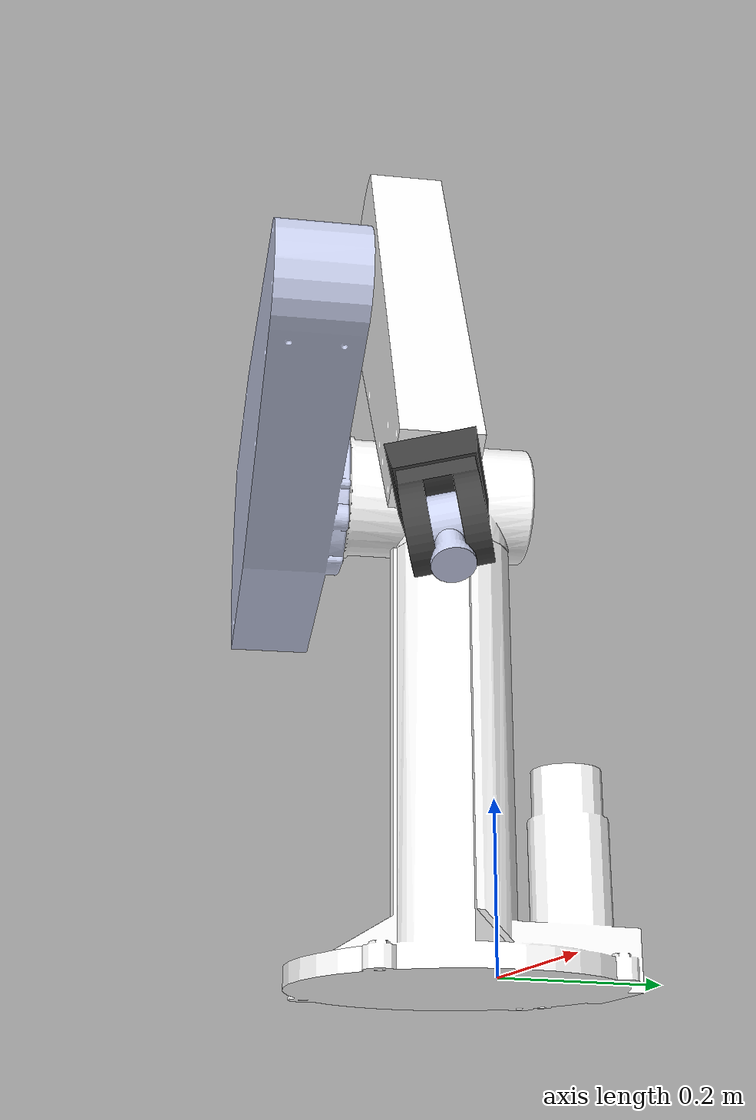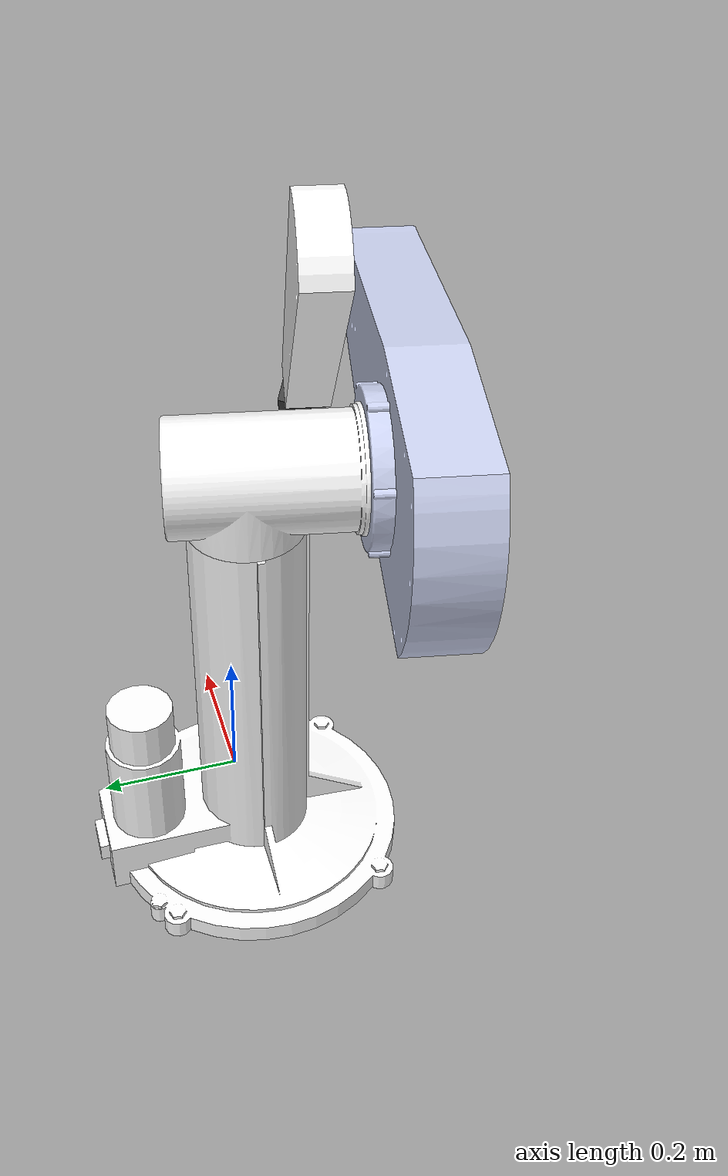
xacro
<?xml version="1.0" encoding="utf-8"?>
<robot
  name="puma560_description" xmlns:xacro="http://www.ros.org/wiki/xacro">
  <!-- Puma 560 description.-->
  <link
    name="world">
    <visual>
      <origin
        xyz="0 0 0"
        rpy="0 0 0" />
      <geometry>
        <box size="0.0 0.0 0.0"/>
      </geometry>
    </visual>
  </link>
  <link
    name="base_link">
    <inertial>
      <origin
        xyz="-0.12618 -0.038304 -0.022005"
        rpy="0 0 0" />
      <mass
        value="15.807" />
      <inertia
        ixx="0.55024"
        ixy="-1.5584E-10"
        ixz="2.6401E-11"
        iyy="0.16071"
        iyz="-0.022162"
        izz="0.50424" />
    </inertial>
    <visual>
      <origin
        xyz="0 0 0"
        rpy="0 0 0" />
      <geometry>
        <mesh
          filename="package://puma560_description/meshes/base_link.STL" />
      </geometry>
      <material
        name="">
        <color
          rgba="1 1 1 1" />
      </material>
    </visual>
    <collision>
      <origin
        xyz="0 0 0"
        rpy="0 0 0" />
      <geometry>
        <mesh
          filename="package://puma560_description/meshes/base_link.STL" />
      </geometry>
    </collision>
  </link>
  <joint
    name="j0"
    type="fixed">
    <origin
      xyz="0 0 0.23"
      rpy="0 0 0" />
    <parent
      link="world" />
    <child
      link="base_link" />
  </joint>
  <link
    name="link_1">
    <inertial>
      <origin
        xyz="-0.022505 -0.07849 -3.2256E-07"
        rpy="0 0 0" />
      <mass
        value="4.4341" />
      <inertia
        ixx="0.013316"
        ixy="-0.00027859"
        ixz="-1.214E-07"
        iyy="0.027164"
        iyz="2.346E-07"
        izz="0.027328" />
    </inertial>
    <visual>
      <origin
        xyz="0 0 0"
        rpy="0 0 0" />
      <geometry>
        <mesh
          filename="package://puma560_description/meshes/link_1.STL" />
      </geometry>
      <material
        name="">
        <color
          rgba="1 1 1 1" />
      </material>
    </visual>
    <collision>
      <origin
        xyz="0 0 0"
        rpy="0 0 0" />
      <geometry>
        <mesh
          filename="package://puma560_description/meshes/link_1.STL" />
      </geometry>
    </collision>
  </link>
  <joint
    name="j1"
    type="revolute">
    <origin
      xyz="-0.12618 0 0.31169"
      rpy="-1.5708 0 1.3815" />
    <parent
      link="base_link" />
    <child
      link="link_1" />
    <axis
      xyz="0 1 0" />
    <limit
      lower="-3.1416"
      upper="3.1416"
      effort="1000"
      velocity="0.5" />
  </joint>
  <link
    name="link_2">
    <inertial>
      <origin
        xyz="-0.068869 -4.6775E-05 0.082737"
        rpy="0 0 0" />
      <mass
        value="16.847" />
      <inertia
        ixx="0.65976"
        ixy="4.8383E-05"
        ixz="0.0043475"
        iyy="0.59657"
        iyz="-7.8848E-06"
        izz="0.09723" />
    </inertial>
    <visual>
      <origin
        xyz="0 0 0"
        rpy="0 0 0" />
      <geometry>
        <mesh
          filename="package://puma560_description/meshes/link_2.STL" />
      </geometry>
      <material
        name="">
        <color
          rgba="0.79216 0.81961 0.93333 1" />
      </material>
    </visual>
    <collision>
      <origin
        xyz="0 0 0"
        rpy="0 0 0" />
      <geometry>
        <mesh
          filename="package://puma560_description/meshes/link_2.STL" />
      </geometry>
    </collision>
  </link>
  <joint
    name="j2"
    type="revolute">
    <origin
      xyz="-0.14641 -0.08128 0"
      rpy="3.0346 0 0" />
    <parent
      link="link_1" />
    <child
      link="link_2" />
    <axis
      xyz="1 0 0" />
    <limit
      lower="-1.5707"
      upper="1.5707"
      effort="1000"
      velocity="0.5" />
  </joint>
  <link
    name="link_3">
    <inertial>
      <origin
        xyz="-0.01687 -0.088774 -1.1788E-06"
        rpy="0 0 0" />
      <mass
        value="4.6025" />
      <inertia
        ixx="0.087355"
        ixy="-2.2739E-06"
        ixz="3.6529E-07"
        iyy="0.0091916"
        iyz="-4.837E-07"
        izz="0.082615" />
    </inertial>
    <visual>
      <origin
        xyz="0 0 0"
        rpy="0 0 0" />
      <geometry>
        <mesh
          filename="package://puma560_description/meshes/link_3.STL" />
      </geometry>
      <material
        name="">
        <color
          rgba="1 1 1 1" />
      </material>
    </visual>
    <collision>
      <origin
        xyz="0 0 0"
        rpy="0 0 0" />
      <geometry>
        <mesh
          filename="package://puma560_description/meshes/link_3.STL" />
      </geometry>
    </collision>
  </link>
  <joint
    name="j3"
    type="revolute">
    <origin
      xyz="0 0 0.4318"
      rpy="-2.6879 0 -3.1416" />
    <parent
      link="link_2" />
    <child
      link="link_3" />
    <axis
      xyz="1 0 0" />
    <limit
      lower="-1.5707"
      upper="1.5707"
      effort="1000"
      velocity="0.5" />
  </joint>
  <link
    name="link_4">
    <inertial>
      <origin
        xyz="1.1102E-16 -0.0067199 2.7756E-17"
        rpy="0 0 0" />
      <mass
        value="0.47079" />
      <inertia
        ixx="0.00077289"
        ixy="-1.7279E-19"
        ixz="-5.421E-20"
        iyy="0.00046683"
        iyz="1.5585E-19"
        izz="0.00073772" />
    </inertial>
    <visual>
      <origin
        xyz="0 0 0"
        rpy="0 0 0" />
      <geometry>
        <mesh
          filename="package://puma560_description/meshes/link_4.STL" />
      </geometry>
      <material
        name="">
        <color
          rgba="0.25098 0.25098 0.25098 1" />
      </material>
    </visual>
    <collision>
      <origin
        xyz="0 0 0"
        rpy="0 0 0" />
      <geometry>
        <mesh
          filename="package://puma560_description/meshes/link_4.STL" />
      </geometry>
    </collision>
  </link>
  <joint
    name="j4"
    type="revolute">
    <origin
      xyz="-0.016872 -0.39296 0"
      rpy="3.1416 -1.2686 3.1416" />
    <parent
      link="link_3" />
    <child
      link="link_4" />
    <axis
      xyz="0 1 0" />
    <limit
      lower="-1.5707"
      upper="1.5707"
      effort="1000"
      velocity="0.5" />
  </joint>
  <link
    name="link_5">
    <inertial>
      <origin
        xyz="6.6543E-10 -3.7332E-09 0.010974"
        rpy="0 0 0" />
      <mass
        value="0.077406" />
      <inertia
        ixx="4.5414E-05"
        ixy="1.1361E-11"
        ixz="-6.3669E-13"
        iyy="4.3032E-05"
        iyz="2.5557E-12"
        izz="1.6966E-05" />
    </inertial>
    <visual>
      <origin
        xyz="0 0 0"
        rpy="0 0 0" />
      <geometry>
        <mesh
          filename="package://puma560_description/meshes/link_5.STL" />
      </geometry>
      <material
        name="">
        <color
          rgba="0.79216 0.81961 0.93333 1" />
      </material>
    </visual>
    <collision>
      <origin
        xyz="0 0 0"
        rpy="0 0 0" />
      <geometry>
        <mesh
          filename="package://puma560_description/meshes/link_5.STL" />
      </geometry>
    </collision>
  </link>
  <joint
    name="j5"
    type="revolute">
    <origin
      xyz="0 -0.039129 0"
      rpy="1.4855 1.5708 0" />
    <parent
      link="link_4" />
    <child
      link="link_5" />
    <axis
      xyz="1 0 0" />
    <limit
      lower="-1.5707"
      upper="1.5707"
      effort="1000"
      velocity="0.5" />
  </joint>

  <!-- Transmission-->
  <transmission name="trans_j1">
    <type>transmission_interface/SimpleTransmission</type>
    <joint name="j1">
      <hardwareInterface>EffortJointInterface</hardwareInterface>
    </joint>
    <actuator name="motor_j1">
      <hardwareInterface>EffortJointInterface</hardwareInterface>
      <mechanicalReduction>1</mechanicalReduction>
    </actuator>
  </transmission>

  <transmission name="trans_j2">
    <type>transmission_interface/SimpleTransmission</type>
    <joint name="j2">
      <hardwareInterface>EffortJointInterface</hardwareInterface>
    </joint>
    <actuator name="motor_j2">
      <hardwareInterface>EffortJointInterface</hardwareInterface>
      <mechanicalReduction>1</mechanicalReduction>
    </actuator>
  </transmission>

  <transmission name="trans_j3">
    <type>transmission_interface/SimpleTransmission</type>
    <joint name="j3">
      <hardwareInterface>EffortJointInterface</hardwareInterface>
    </joint>
    <actuator name="motor_j3">
      <hardwareInterface>EffortJointInterface</hardwareInterface>
      <mechanicalReduction>1</mechanicalReduction>
    </actuator>
  </transmission>

  <transmission name="trans_j4">
    <type>transmission_interface/SimpleTransmission</type>
    <joint name="j4">
      <hardwareInterface>EffortJointInterface</hardwareInterface>
    </joint>
    <actuator name="motor_j4">
      <hardwareInterface>EffortJointInterface</hardwareInterface>
      <mechanicalReduction>1</mechanicalReduction>
    </actuator>
  </transmission>

  <transmission name="trans_j5">
    <type>transmission_interface/SimpleTransmission</type>
    <joint name="j5">
      <hardwareInterface>EffortJointInterface</hardwareInterface>
    </joint>
    <actuator name="motor_j5">
      <hardwareInterface>EffortJointInterface</hardwareInterface>
      <mechanicalReduction>1</mechanicalReduction>
    </actuator>
  </transmission>

  <!-- Gazebo plugin. -->
  <gazebo>
    <plugin name="gazebo_ros_control" filename="libgazebo_ros_control.so">
      <robotNamespace>/puma560_description</robotNamespace>
    </plugin>
  </gazebo>
</robot>
